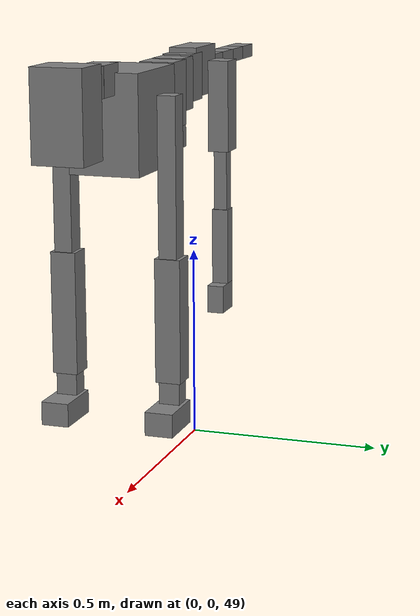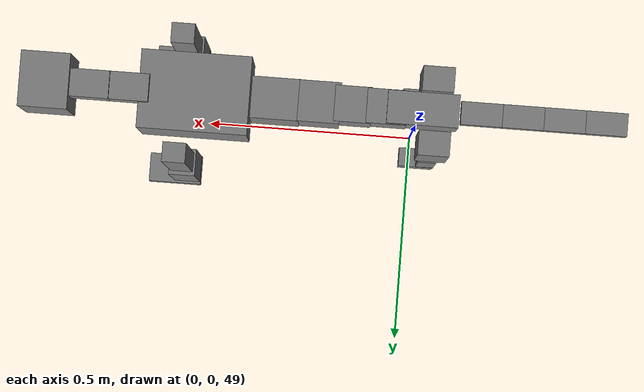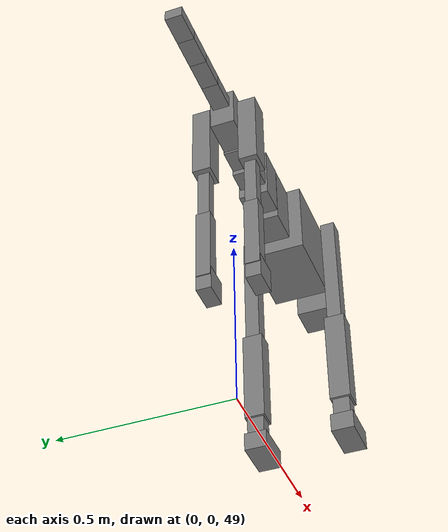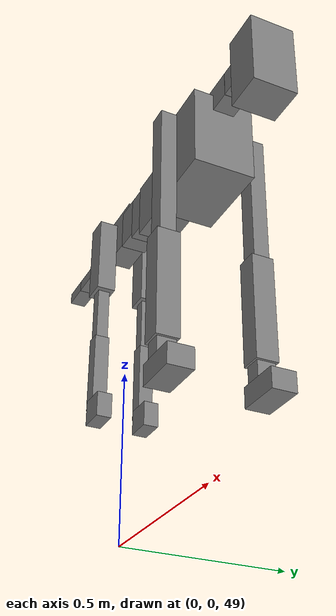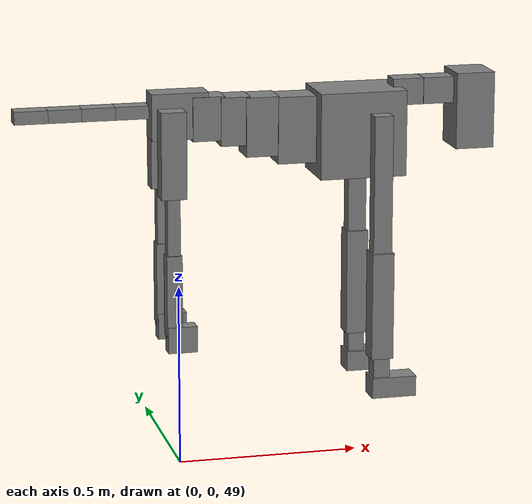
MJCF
<mujoco model="dog">

    <default>
        <joint armature="0.02" stiffness="1" damping="0.2" limited="true"/>
        <geom condim="3" friction="1 0.05 0.05" margin="0.01"/>
        <motor ctrllimited="true" ctrlrange="-1.0 1.0" forcelimited="true" gear="50"/>
    </default>

    <compiler inertiafromgeom="true" angle="radian"/>

    <option timestep="0.016" iterations="50" tolerance="1e-10" solver="Newton" jacobian="dense" cone="pyramidal"/>

    <size nconmax="20000" njmax="60000" nstack="5000000"/>
    <visual>
        <map force="0.1" zfar="30"/>
        <rgba haze="0.15 0.25 0.35 1"/>
        <quality shadowsize="2048"/>
        <global offwidth="800" offheight="800"/>
    </visual>

    <asset>
        <texture type="skybox" builtin="gradient" rgb1="0.3 0.5 0.7" rgb2="0 0 0" width="512" height="512"/>
        <texture name="texplane" type="2d" builtin="checker" rgb1=".2 .3 .4" rgb2=".1 0.15 0.2" width="512" height="512"
                 mark="cross" markrgb=".8 .8 .8"/>
        <texture name="texgeom" type="cube" builtin="flat" mark="cross" width="127" height="1278" rgb1="0.8 0.6 0.4"
                 rgb2="0.8 0.6 0.4" markrgb="1 1 1" random="0.01"/>

        <material name="matplane" reflectance="0.3" texture="texplane" texrepeat="1 1" texuniform="true"/>
        <material name="matgeom" texture="texgeom" texuniform="true" rgba="0.8 0.6 .4 1"/>
    </asset>

    <worldbody>
        <geom name="floor" pos="0 0 0" size="0 0 .25" type="plane" material="matplane" condim="3"/>

        <light directional="false" diffuse=".2 .2 .2" specular="0 0 0" pos="0 0 5" dir="0 0 -1" castshadow="false"/>
        <light mode="targetbodycom" target="torso" directional="false" diffuse=".8 .8 .8" specular="0.3 0.3 0.3"
               pos="0 0 4.0" dir="0 0 -1"/>

        <body name="root" pos="0 0 50">
            <freejoint name="root_1"/>
            <geom type="box" pos="0 0 -0.02" size="0.0774  0.0358  0.063" density="2030"/>

            <body name="spine1" pos="0.054 0 0">
                <joint name="spine1_y" axis="0 1 0" range="0 0.7" limited="true"/>
                <geom type="box" pos="0.02375 0 -0.03" size="0.04375  0.0375  0.05985" density="2030"/>

                <body name="spine2" pos="0.0612 0 0">
                    <joint name="spine2_y" axis="0 1 0" range="-0.15 0.15" limited="true"/>
                    <geom type="box" pos="0.03555  0  -0.04" size="0.04055  0.039  0.06615" density="2030"/>

                    <body name="spine3" pos="0.0730 0 0">
                        <joint name="spine3_y" axis="0 1 0" range="-0.15 0.15" limited="true"/>
                        <geom type="box" pos="0.03555  0  -0.057" size="0.04555  0.0445  0.081" density="2030"/>

                        <body name="spine4" pos="0.0780 0 0">
                            <joint name="spine4_y" axis="0 1 0" range="-0.15 0.15" limited="true"/>
                            <geom type="box" pos="0.05265  0  -0.07" size="0.05265  0.045  0.09135" density="2030"/>

                            <body name="torso" pos="0.1082 0 0">
                                <joint name="torso_y" axis="0 1 0" range="-0.15 0.15" limited="true"/>
                                <geom type="box" pos="0.11925  0  -0.085" size="0.11925  0.085  0.11745"
                                      density="2030"/>

                                <body name="neck1" pos="0.2160  0   0.0180">
                                    <joint name="neck1_y" axis="0 1 0" range="-1.2  -1" limited="true"/>
                                    <geom type="box" pos="0.0423  0  0" size="0.0423  0.03  0.036" density="2325"/>

                                    <body name="neck2" pos="0.0853  0  0">
                                        <joint name="neck2_y" axis="0 1 0" range="0.1  0" limited="true"/>
                                        <geom type="box" pos="0.0423  0  0" size="0.0423  0.03  0.036" density="2325"/>

                                        <body name="head" pos="0.0853  0  0">
                                            <joint name="head_y" axis="0 1 0" range="-0.3  -0.2" limited="true"/>
                                            <geom type="box" pos="0.0531  0  -0.055" size="0.0531  0.06  0.1044"
                                                  density="4030"/>

                                        </body>
                                    </body>
                                </body>

                                <body name="front_shoulder" pos="0.156  0   -0.0480">
                                    <joint name="front_shoulder_y" axis="0 1 0" range="-1 1.5" limited="true"/>
                                    <geom type="box" pos="0 0.13 -0.1750" size="0.0255  0.0218  0.2016" density="1158"/>
                                    <geom type="box" pos="0 -0.13 -0.1750" size="0.0255  0.0218  0.2016"
                                          density="1158"/>

                                    <body name="front_elbow" pos="0  0  -0.3500">
                                        <joint name="front_elbow_y" axis="0 1 0" range="-2 0" limited="true"/>
                                        <geom type="box" pos="0 0.13 -0.1477" size="0.0300  0.0307  0.1477"
                                              density="1081"/>
                                        <geom type="box" pos="0 -0.13 -0.1477" size="0.0300  0.0307  0.1477"
                                              density="1081"/>

                                        <body name="front_wrist" pos="0  0  -0.2953">
                                            <joint name="front_wrist_y" axis="0 1 0" range="-0.2 0" limited="true"/>
                                            <geom type="box" pos="0 0.13 -0.0342" size="0.0227  0.0252  0.0474"
                                                  density="1664"/>
                                            <geom type="box" pos="0 -0.13 -0.0342" size="0.0227  0.0252  0.0474"
                                                  density="1664"/>

                                            <body name="front_finger_end" pos="0  0  -0.0685">
                                                <joint name="front_finger_y" axis="0 1 0" range="-0.4 1"
                                                       limited="true"/>
                                                <geom type="box" pos="0.0337  0.13  -0.0131"
                                                      size="0.0617  0.0337  0.0281" density="1515"/>
                                                <geom type="box" pos="0.0337  -0.13  -0.0131"
                                                      size="0.0617  0.0337  0.0281" density="1515"/>

                                            </body>

                                        </body>
                                    </body>
                                </body>

                            </body>
                        </body>
                    </body>
                </body>
            </body>

            <body name="back_hip" pos="-0.03 0 -0.018">
                <joint name="back_hip_y" axis="0 1 0" range="-1.5 0.3" limited="true"/>
                <geom type="box" pos="0 0.07 -0.0955" size="0.0345  0.0271  0.1183" density="1154"/>
                <geom type="box" pos="0 -0.07 -0.0955" size="0.0345  0.0271  0.1183" density="1154"/>

                <body name="back_knee" pos="0  0  -0.1909">
                    <joint name="back_knee_y" axis="0 1 0" range="0 2.8" limited="true"/>
                    <geom type="box" pos="0 0.07 -0.0949" size="0.0174  0.0172  0.1105" density="1227"/>
                    <geom type="box" pos="0 -0.07 -0.0949" size="0.0174  0.0172  0.1105" density="1227"/>

                    <body name="back_ankle" pos="0  0  -0.1899">
                        <joint name="back_ankle_y" axis="0 1 0" range="-2.2 0" limited="true"/>
                        <geom type="box" pos="0 0.07 -0.1010" size="0.0211  0.0211  0.1122" density="1284"/>
                        <geom type="box" pos="0 -0.07 -0.1010" size="0.0211  0.0211  0.1122" density="1284"/>

                        <body name="back_toe_end" pos="0  0  -0.2020">
                            <joint name="back_toe_y" axis="0 1 0" range="-0.4 1" limited="true"/>
                            <geom type="box" pos="0.0216  0.07  -0.0210" size="0.0397  0.0216  0.0360" density="1515"/>
                            <geom type="box" pos="0.0216  -0.07  -0.0210" size="0.0397  0.0216  0.0360" density="1515"/>

                        </body>
                    </body>
                </body>
            </body>

            <body name="tail1" pos="-0.074 0 -0.006">
                <joint name="tail1_y" axis="0 1 0" range="-0.2 0.2" limited="true"/>
                <geom type="box" pos="-0.0536  0  0" size="0.045  0.025  0.0175" density="1587"/>

                <body name="tail2" pos="-0.09 0 0">
                    <joint name="tail2_y" axis="0 1 0" range="-0.2 0.2" limited="true"/>
                    <geom type="box" pos="-0.0536  0  0" size="0.045  0.025  0.0175" density="1587"/>

                    <body name="tail3" pos="-0.09 0 0">
                        <joint name="tail3_y" axis="0 1 0" range="-0.2 0.2" limited="true"/>
                        <geom type="box" pos="-0.0536  0  0" size="0.045  0.025  0.0175" density="1587"/>

                        <body name="tail4" pos="-0.09 0 0">
                            <joint name="tail4_y" axis="0 1 0" range="-0.2 0.2" limited="true"/>
                            <geom type="box" pos="-0.0536  0  0" size="0.045  0.025  0.0175" density="1587"/>

                        </body>
                    </body>
                </body>
            </body>
        </body>
    </worldbody>

    <actuator>
        <motor joint="spine1_y" forcerange="-150 150     "/>
        <motor joint="spine2_y" forcerange="-150 150     "/>
        <motor joint="spine3_y" forcerange="-150 150     "/>
        <motor joint="spine4_y" forcerange="-150 150     "/>
        <motor joint="torso_y" forcerange="-150 150     "/>
        <motor joint="neck1_y" forcerange="-100 100       "/>
        <motor joint="neck2_y" forcerange="-100 100       "/>
        <motor joint="head_y" forcerange="-150 150       "/>
        <motor joint="front_shoulder_y" forcerange="-102.52 143.04"/>
        <motor joint="front_elbow_y" forcerange="-135.84 187.33"/>
        <motor joint="front_wrist_y" forcerange="-103.25 98.14"/>
        <motor joint="front_finger_y" forcerange="-99.80 39.71"/>
        <motor joint="back_hip_y" forcerange="-261.20 299.53"/>
        <motor joint="back_knee_y" forcerange="-239.33 210.60"/>
        <motor joint="back_angle_y" forcerange="-89.42 148.87"/>
        <motor joint="back_toe_y" forcerange="-52.79 40.30"/>
        <motor joint="tail1_y" forcerange="-50 50     "/>
        <motor joint="tail2_y" forcerange="-50 50     "/>
        <motor joint="tail3_y" forcerange="-50 50     "/>
        <motor joint="tail4_y" forcerange="-50 50     "/>
    </actuator>
</mujoco>
